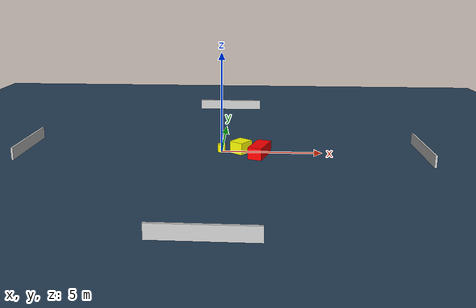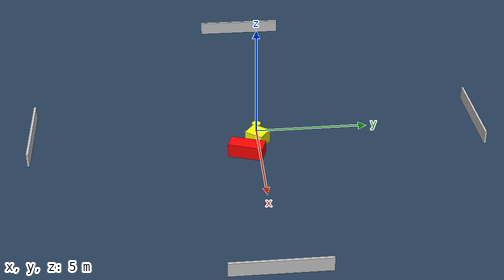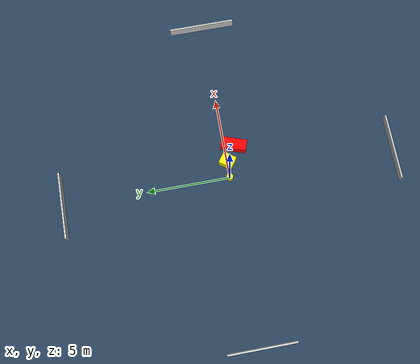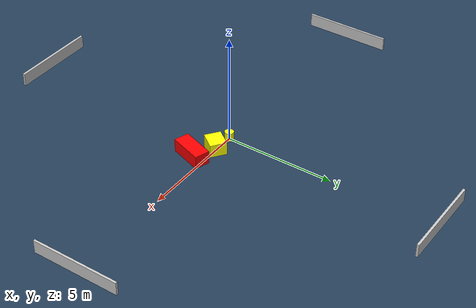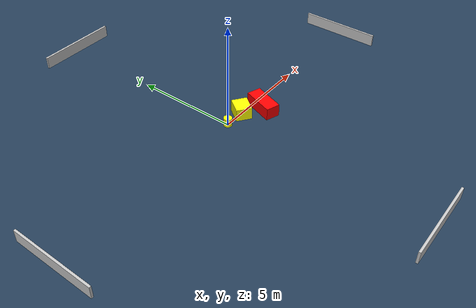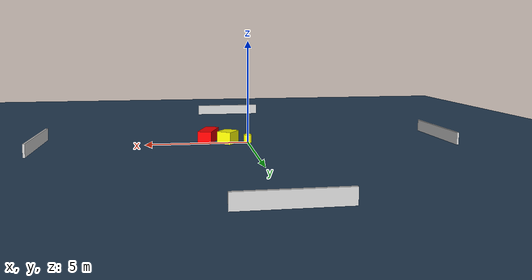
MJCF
<?xml version="1.0" ?>
<mujoco model="generated_environment">
  <option timestep="0.01" integrator="RK4" cone="elliptic"/>
  <default>
    <geom density="1"/>
  </default>
  <asset>
    <texture builtin="gradient" height="3072" name="skybox" rgb1="0.3 0.5 0.7" rgb2="0 0 0" type="skybox" width="512"/>
    <texture builtin="checker" height="300" name="groundplane" rgb1="0.2 0.3 0.4" rgb2="0.1 0.2 0.3" type="2d" width="300"/>
    <material name="groundplane" reflectance="0.2" texrepeat="5 5" texture="groundplane"/>
  </asset>
  <worldbody>
    <light dir="0 0 -1" directional="true" pos="0 0 1.5"/>
    <geom condim="3" friction="0.5 0.005 0.001" material="groundplane" name="floor" pos="0 0 0" size="0 0 0.05" type="plane"/>
    <body name="walls">
      <geom name="wall_1" condim="4" pos="-10.0 0.0 0.3" rgba="0.800000011920929 0.800000011920929 0.800000011920929 1.0" size="0.05 2.0 0.3" type="box"/>
      <geom name="wall_2" condim="4" pos="10.0 0.0 0.3" rgba="0.800000011920929 0.800000011920929 0.800000011920929 1.0" size="0.05 2.0 0.3" type="box"/>
      <geom name="wall_3" condim="4" pos="0.0 -10.0 0.3" rgba="0.800000011920929 0.800000011920929 0.800000011920929 1.0" size="2.0 0.05 0.3" type="box"/>
      <geom name="wall_4" condim="4" pos="0.0 10.0 0.3" rgba="0.800000011920929 0.800000011920929 0.800000011920929 1.0" size="2.0 0.05 0.3" type="box"/>
    </body>
    <body name="robot">
      <joint name="joint_x" type="slide" pos="0 0 0" axis="1 0 0"/>
      <joint name="joint_y" type="slide" pos="0 0 0" axis="0 1 0"/>
      <geom name="robot" type="cylinder" pos="0.0 0.0 0.2" size="0.2 0.2 0.0" mass="5.0" friction="1.0 0.005 0.0001" condim="4" rgba="1.0 1.0 0.0 1.0"/>
    </body>
    <body name="obstacle_1_movable">
      <geom name="obstacle_1_movable" condim="4" pos="0.9740286627982073 -0.03642589294027113 0.3" euler="0 0 323.57783660856455" friction="0.0 0.005 0.001" rgba="1.0 1.0 0.0 1.0" size="0.3721015473901943 0.42138425001539737 0.3" type="box" mass="0.1"/>
      <joint type="free"/>
    </body>
    <body name="obstacle_2_static">
      <geom name="obstacle_2_static" condim="4" pos="1.909698295605313 -0.5852347695416947 0.3" euler="0 0 341.05135981821957" friction="0.0 0.005 0.001" rgba="1.0 0.0 0.0 1.0" size="0.34261109541055135 0.7675467908092803 0.3" type="box"/>
    </body>
  </worldbody>
  <actuator>
    <motor name="actuator_x" joint="joint_x" gear="1" ctrlrange="-1 1"/>
    <motor name="actuator_y" joint="joint_y" gear="1" ctrlrange="-1 1"/>
  </actuator>
</mujoco>
